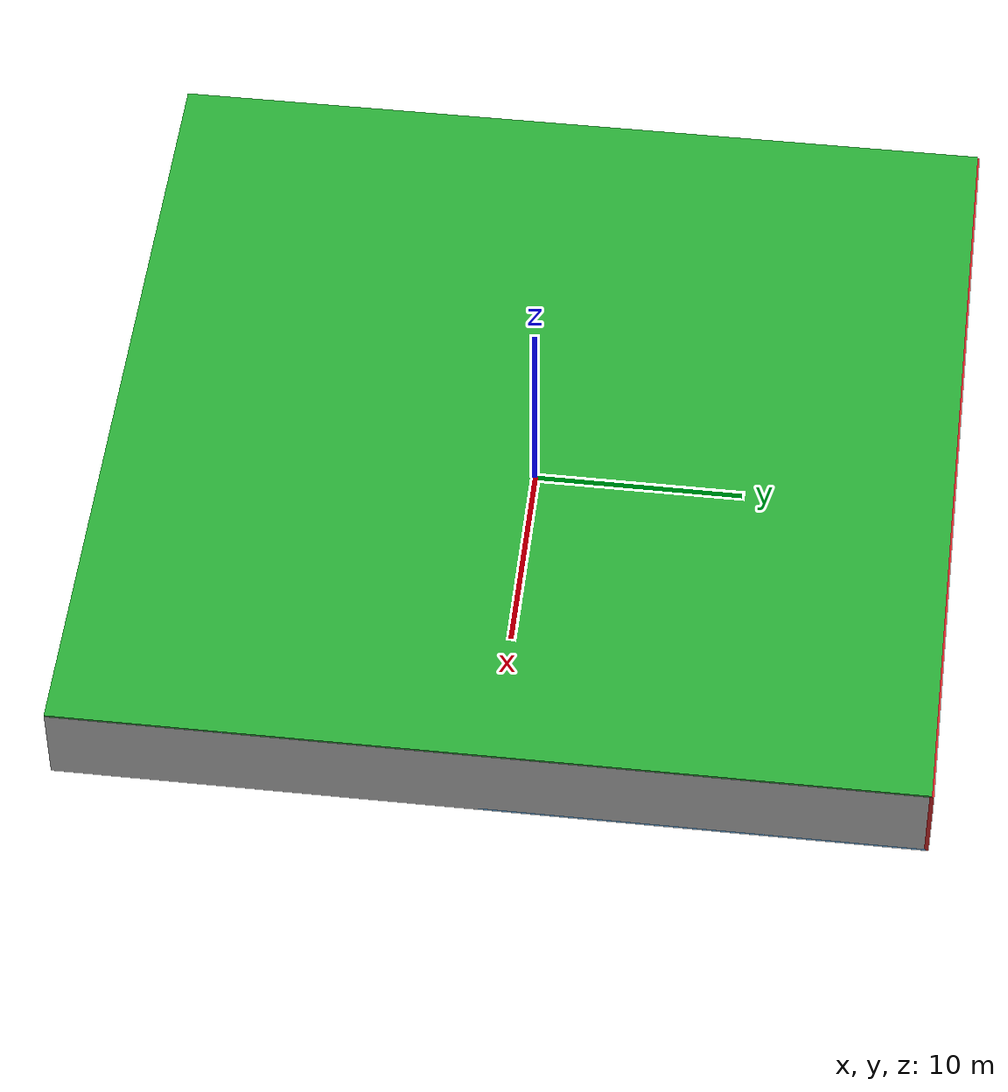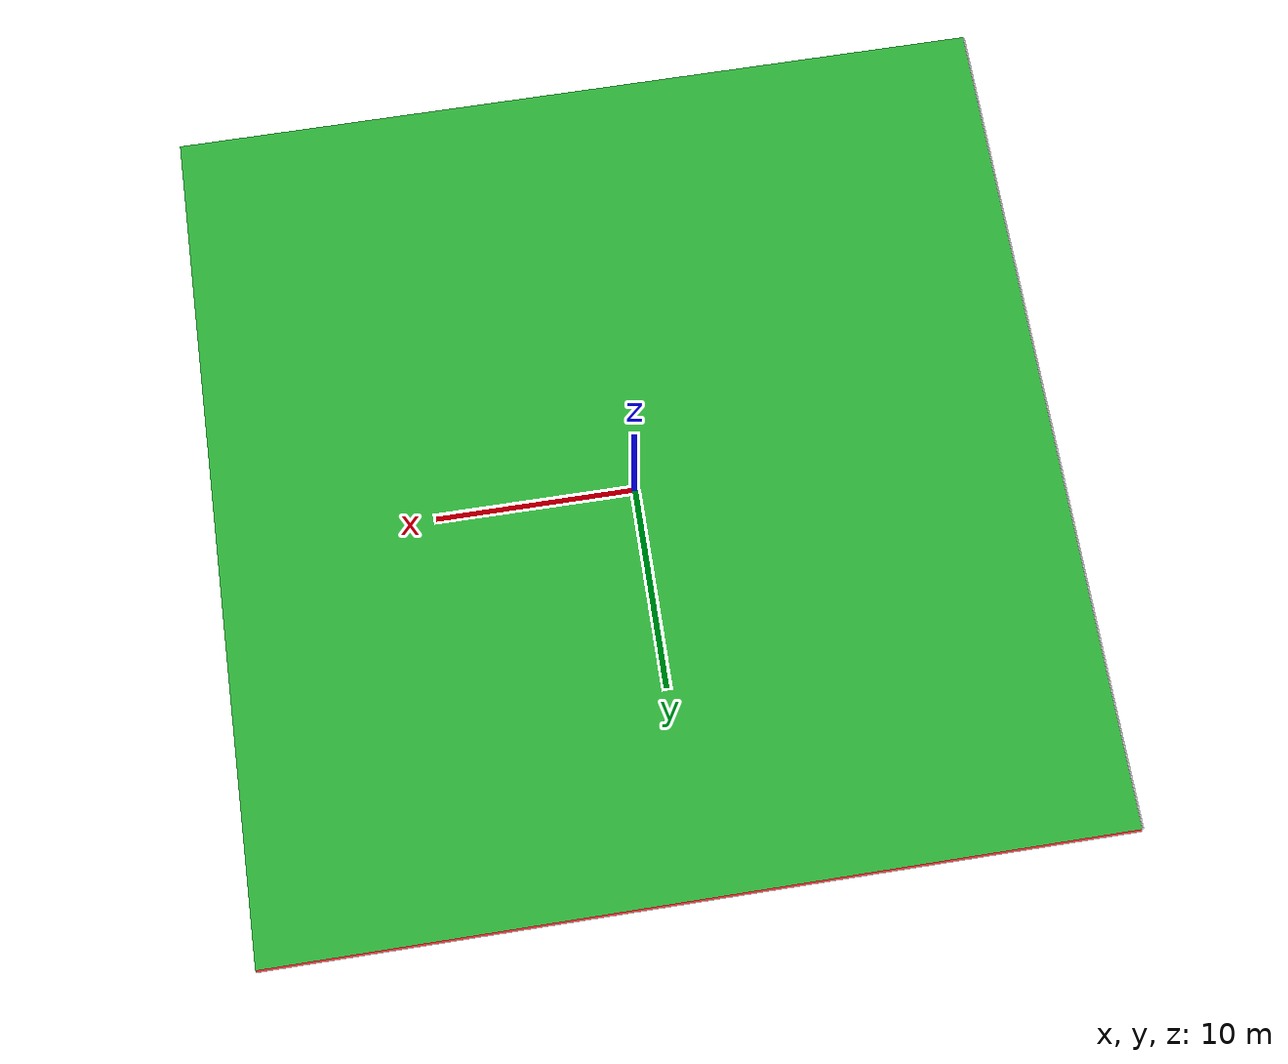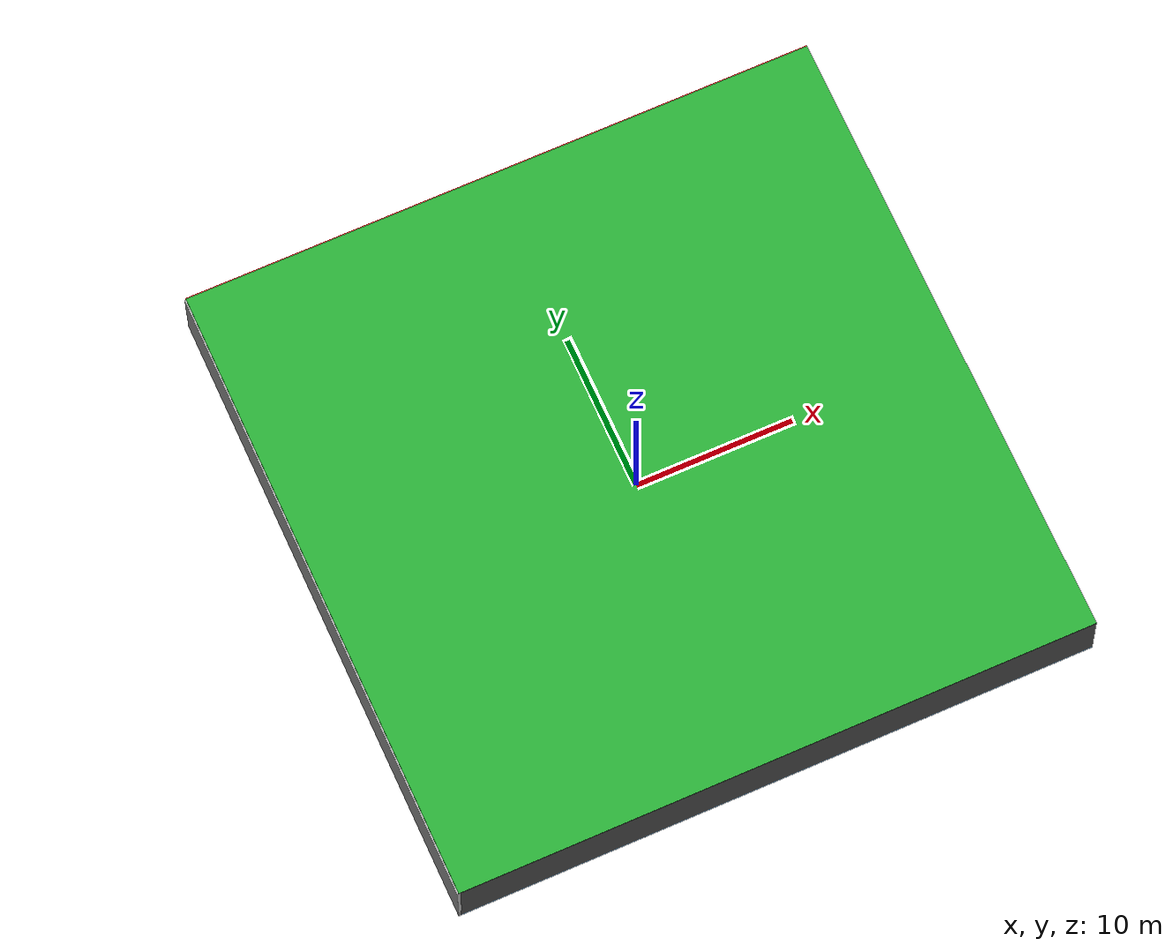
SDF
<sdf version="1.4">
 <world name="default">
  <physics type="ode">
   <max_step_size>0.001</max_step_size>
   <real_time_factor>1</real_time_factor>
   <real_time_update_rate>1000</real_time_update_rate>
   <gravity>0 0 -9.8</gravity>
  </physics>
  <scene><ambient>0.4 0.4 0.4 1</ambient><background>0.7 0.7 0.7 1</background><shadows>1</shadows></scene>
  <model name="Surrounding">
   <static>1</static>
   <link name="Ceiling">
    <collision name="Ceiling_Collision"><geometry><box><size>40 40 0.1</size></box></geometry></collision>
    <visual name="Ceiling_Visual">
     <geometry><box><size>40 40 0.1</size></box></geometry>
     <material>
      <script><uri>file://media/materials/scripts/gazebo.material</uri><name>Gazebo/GreenGlow</name></script>
     </material>
    </visual>
    <pose>0 0 4.05 0 0 0</pose>
   </link>
   <link name="Wall_South">
    <collision name="Wall_South_Collision">
     <geometry><box><size>40 0 4</size></box></geometry>
     <pose>0 0 2 0 -0 0</pose>
    </collision>
    <visual name="Wall_South_Visual">
     <pose>0 0 2 0 -0 0</pose>
     <geometry><box><size>40 0 4</size></box></geometry>
     <material>
      <script><uri>file://media/materials/scripts/gazebo.material</uri><name>Gazebo/Road</name></script>
     </material>
    </visual>
    <velocity_decay><linear>0</linear><angular>0</angular></velocity_decay>
    <pose>0 -20 0 0 -0 0</pose>
   </link>
   <link name="Wall_East">
    <collision name="Wall_21_Collision">
     <geometry><box><size>40 0 4</size></box></geometry>
     <pose>0 0 2 0 -0 0</pose>
    </collision>
    <visual name="Wall_21_Visual">
     <pose>0 0 2 0 -0 0</pose>
     <geometry><box><size>40 0 4</size></box></geometry>
     <material>
      <script><uri>file://media/materials/scripts/gazebo.material</uri><name>Gazebo/JointAnchor</name></script>
     </material>
    </visual>
    <velocity_decay><linear>0</linear><angular>0</angular></velocity_decay>
    <pose>20 0 0 0 -0 1.5708</pose>
   </link>
   <link name="Wall_North">
    <collision name="Wall_22_Collision">
     <geometry><box><size>40 0.2 4</size></box></geometry>
     <pose>0 0 2 0 -0 0</pose>
    </collision>
    <visual name="Wall_22_Visual">
     <pose>0 0 2 0 -0 0</pose>
     <geometry><box><size>40 0.2 4</size></box></geometry>
     <material>
      <script><uri>file://media/materials/scripts/gazebo.material</uri><name>Gazebo/RedBright</name></script>
     </material>
    </visual>
    <velocity_decay><linear>0</linear><angular>0</angular></velocity_decay>
    <pose>0 20 0 0 -0 0</pose>
   </link>
   <link name="Wall_West">
    <collision name="Wall_23_Collision">
     <geometry><box><size>40 0.2 4</size></box></geometry>
     <pose>0 0 2 0 -0 0</pose>
    </collision>
    <visual name="Wall_23_Visual">
     <pose>0 0 2 0 -0 0</pose>
     <geometry><box><size>40 0.2 4</size></box></geometry>
     <material>
      <script><uri>file://media/materials/scripts/gazebo.material</uri><name>Gazebo/CloudySky</name></script>
     </material>
    </visual>
    <velocity_decay><linear>0</linear><angular>0</angular></velocity_decay>
    <pose>-20 0 0 0 0 -1.5708</pose>
   </link>
   <link name="Ground_link">
    <collision name="collision">
     <pose>0 0 .05 0 -0 0</pose>
     <geometry><box><size>40 40 0.1</size></box></geometry>
    </collision>
    <visual name="visual">
     <pose>0 0 .05 0 -0 0</pose>
     <geometry><box><size>40 40 0.1</size></box></geometry>
     <material>
      <script><uri>file://media/materials/scripts/gazebo.material</uri><name>Gazebo/SkyBlue</name></script>
     </material>
    </visual>
   </link>
   <static>1</static>
  </model>
  <spherical_coordinates>
   <surface_model>EARTH_WGS84</surface_model>
   <latitude_deg>0</latitude_deg>
   <longitude_deg>0</longitude_deg>
   <elevation>0</elevation>
   <heading_deg>0</heading_deg>
  </spherical_coordinates>
  <light name="lightball_0" type="diffuse">
   <diffuse>0.8 0.8 0.8 1</diffuse>
   <specular>0.2 0.2 0.2 1</specular>
   <attenuation>
    <range>100</range>
    <constant>0.7</constant>
    <linear>0.01</linear>
    <quadratic>0.001</quadratic>
   </attenuation>
   <direction>-0.5 0.1 -0.9</direction>
   <pose>-2.08546980932 11.1930397112 3.00217922506 0 0 0</pose>
  </light>
  <light name="lightball_1" type="diffuse">
   <diffuse>0.8 0.8 0.8 1</diffuse>
   <specular>0.2 0.2 0.2 1</specular>
   <attenuation>
    <range>100</range>
    <constant>0.7</constant>
    <linear>0.01</linear>
    <quadratic>0.001</quadratic>
   </attenuation>
   <direction>-0.5 0.1 -0.9</direction>
   <pose>6.87592681785 11.6029590331 1.33578995983 0 0 0</pose>
  </light>
  <light name="lightball_2" type="diffuse">
   <diffuse>0.8 0.8 0.8 1</diffuse>
   <specular>0.2 0.2 0.2 1</specular>
   <attenuation>
    <range>100</range>
    <constant>0.7</constant>
    <linear>0.01</linear>
    <quadratic>0.001</quadratic>
   </attenuation>
   <direction>-0.5 0.1 -0.9</direction>
   <pose>1.55871269296 4.50903131797 2.76835239219 0 0 0</pose>
  </light>
  <light name="lightball_3" type="diffuse">
   <diffuse>0.8 0.8 0.8 1</diffuse>
   <specular>0.2 0.2 0.2 1</specular>
   <attenuation>
    <range>100</range>
    <constant>0.7</constant>
    <linear>0.01</linear>
    <quadratic>0.001</quadratic>
   </attenuation>
   <direction>-0.5 0.1 -0.9</direction>
   <pose>6.31608291454 -0.498549938642 1.04845592892 0 0 0</pose>
  </light>
  <light name="lightball_4" type="diffuse">
   <diffuse>0.8 0.8 0.8 1</diffuse>
   <specular>0.2 0.2 0.2 1</specular>
   <attenuation>
    <range>100</range>
    <constant>0.7</constant>
    <linear>0.01</linear>
    <quadratic>0.001</quadratic>
   </attenuation>
   <direction>-0.5 0.1 -0.9</direction>
   <pose>2.79152449804 0.461660050824 2.27003902249 0 0 0</pose>
  </light>
  <light name="lightball_5" type="diffuse">
   <diffuse>0.8 0.8 0.8 1</diffuse>
   <specular>0.2 0.2 0.2 1</specular>
   <attenuation>
    <range>100</range>
    <constant>0.7</constant>
    <linear>0.01</linear>
    <quadratic>0.001</quadratic>
   </attenuation>
   <direction>-0.5 0.1 -0.9</direction>
   <pose>-8.2234303736 3.49869016979 3.15830914708 0 0 0</pose>
  </light>
  <light name="lightball_6" type="diffuse">
   <diffuse>0.8 0.8 0.8 1</diffuse>
   <specular>0.2 0.2 0.2 1</specular>
   <attenuation>
    <range>100</range>
    <constant>0.7</constant>
    <linear>0.01</linear>
    <quadratic>0.001</quadratic>
   </attenuation>
   <direction>-0.5 0.1 -0.9</direction>
   <pose>10.6353778365 16.9576439923 3.79701820378 0 0 0</pose>
  </light>
  <light name="lightball_7" type="diffuse">
   <diffuse>0.8 0.8 0.8 1</diffuse>
   <specular>0.2 0.2 0.2 1</specular>
   <attenuation>
    <range>100</range>
    <constant>0.7</constant>
    <linear>0.01</linear>
    <quadratic>0.001</quadratic>
   </attenuation>
   <direction>-0.5 0.1 -0.9</direction>
   <pose>-8.81419136464 12.9945975977 2.69389614592 0 0 0</pose>
  </light>
  <light name="lightball_8" type="diffuse">
   <diffuse>0.8 0.8 0.8 1</diffuse>
   <specular>0.2 0.2 0.2 1</specular>
   <attenuation>
    <range>100</range>
    <constant>0.7</constant>
    <linear>0.01</linear>
    <quadratic>0.001</quadratic>
   </attenuation>
   <direction>-0.5 0.1 -0.9</direction>
   <pose>-5.8154435361 0.884881871246 3.06155992 0 0 0</pose>
  </light>
  <include>
   <uri>model://robocup_3Dsim_goal</uri>
   <pose>-18.3158221575 -1.81411095426 0 0 0 3.10588032683</pose>
  </include>
  <include>
   <uri>model://construction_cone</uri>
   <pose>-18.1678149368 9.84904201858 0 0 0 2.43795543765</pose>
  </include>
  <include><uri>model://cabinet</uri><pose>-17.1189806371 12.0216837752 0 0 0 1.54193551871</pose></include>
  <include>
   <uri>model://textured_shapes</uri>
   <pose>-11.8107882204 0.219561033332 0 0 0 0.443269663872</pose>
  </include>
  <include><uri>model://cabinet</uri><pose>-11.223223503 15.4436742151 0 0 0 2.31530880622</pose></include>
  <include>
   <uri>model://robocup_3Dsim_goal</uri>
   <pose>-8.24609280918 -6.61338196856 0 0 0 2.9167787657</pose>
  </include>
  <include><uri>model://table</uri><pose>-8.88412378192 3.24880500232 0 0 0 0.914394403813</pose></include>
  <include><uri>model://table</uri><pose>-4.66872005677 -12.0549269976 0 0 0 2.54906092239</pose></include>
  <include>
   <uri>model://robocup_3Dsim_goal</uri>
   <pose>-5.51057180915 -1.72452948566 0 0 0 0.703144705025</pose>
  </include>
  <include><uri>model://cabinet</uri><pose>-5.39129655457 2.49151141174 0 0 0 1.24578920292</pose></include>
  <include><uri>model://cabinet</uri><pose>-2.97033631898 18.9537755634 0 0 0 0.476068009236</pose></include>
  <include><uri>model://table</uri><pose>1.64982148828 -3.21362740802 0 0 0 3.13170836464</pose></include>
  <include>
   <uri>model://robocup_3Dsim_goal</uri>
   <pose>-0.0291566637384 4.63300763043 0 0 0 0.462164747176</pose>
  </include>
  <include>
   <uri>model://textured_shapes</uri>
   <pose>-0.0793023961919 7.03138404229 0 0 0 1.25927782377</pose>
  </include>
  <include>
   <uri>model://construction_cone</uri>
   <pose>0.643870099682 13.5144477302 0 0 0 1.64030411937</pose>
  </include>
  <include><uri>model://cabinet</uri><pose>3.5807035218 4.43043456416 0 0 0 2.5029294093</pose></include>
  <include>
   <uri>model://construction_cone</uri>
   <pose>4.51926499993 7.3543184332 0 0 0 0.78391583558</pose>
  </include>
  <include>
   <uri>model://textured_shapes</uri>
   <pose>4.38519699858 11.5112315211 0 0 0 2.08343684616</pose>
  </include>
  <include>
   <uri>model://robocup_3Dsim_goal</uri>
   <pose>6.9598397138 -17.1309567086 0 0 0 2.70245006348</pose>
  </include>
  <include>
   <uri>model://robocup_3Dsim_goal</uri>
   <pose>5.3898517901 3.38013640144 0 0 0 0.0768527968044</pose>
  </include>
  <include><uri>model://table</uri><pose>7.10731357717 8.5989654152 0 0 0 2.6271868374</pose></include>
  <include>
   <uri>model://textured_shapes</uri>
   <pose>6.9599301917 12.9327108903 0 0 0 2.12946926724</pose>
  </include>
  <include><uri>model://cabinet</uri><pose>5.35618382199 18.467414622 0 0 0 1.8538868173</pose></include>
  <include><uri>model://table</uri><pose>10.3087729101 -15.1296118635 0 0 0 2.74982458449</pose></include>
  <include><uri>model://table</uri><pose>10.2075745848 -1.88062832546 0 0 0 2.46518367053</pose></include>
  <include>
   <uri>model://textured_shapes</uri>
   <pose>13.0635694284 0.826739808219 0 0 0 1.45301980883</pose>
  </include>
  <include><uri>model://cabinet</uri><pose>13.4318895668 6.09541820728 0 0 0 1.92155850886</pose></include>
  <include><uri>model://cabinet</uri><pose>15.5945316271 -13.6607514887 0 0 0 2.53133051438</pose></include>
 </world>
</sdf>

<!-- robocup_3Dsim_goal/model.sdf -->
<sdf version="1.5">
  <model name="robocup_3d_goal">
    <static>true</static>
    <link name="left_post">
      <pose>0 1.05 0.45 0 0 0</pose>
      <collision name="collision">
        <geometry>
          <cylinder>
            <radius>0.05</radius>
            <length>0.9</length>
          </cylinder>
        </geometry>
      </collision>
      <visual name="visual">
        <geometry>
          <cylinder>
            <radius>0.05</radius>
            <length>0.9</length>
          </cylinder>
        </geometry>
        <material>
          <script>
            <uri>file://media/materials/scripts/gazebo.material</uri>
            <name>Gazebo/ZincYellow</name>
          </script>
        </material>
      </visual>
    </link>
    <link name="left_support_horiz_lower">
      <pose>0.30 1.05 0.01 0 0 0</pose>
      <collision name="collision">
        <geometry>
          <box>
            <size>0.50 0.02 0.02</size>
          </box>
        </geometry>
      </collision>
      <visual name="visual">
        <geometry>
          <box>
            <size>0.50 0.02 0.02</size>
          </box>
        </geometry>
        <material>
          <script>
            <uri>file://media/materials/scripts/gazebo.material</uri>
            <name>Gazebo/White</name>
          </script>
        </material>
      </visual>
    </link>
    <link name="left_support_horiz_upper">
      <pose>0.30 1.05 0.79 0 0 0</pose>
      <collision name="collision">
        <geometry>
          <box>
            <size>0.50 0.02 0.02</size>
          </box>
        </geometry>
      </collision>
      <visual name="visual">
        <geometry>
          <box>
            <size>0.50 0.02 0.02</size>
          </box>
        </geometry>
        <material>
          <script>
            <uri>file://media/materials/scripts/gazebo.material</uri>
            <name>Gazebo/White</name>
          </script>
        </material>
      </visual>
    </link>
    <link name="left_support_vertical">
      <pose>0.56 1.05 0.4 0 1.5708 0</pose>
      <collision name="collision">
        <geometry>
          <box>
            <size>0.80 0.02 0.02</size>
          </box>
        </geometry>
      </collision>
      <visual name="visual">
        <geometry>
          <box>
            <size>0.80 0.02 0.02</size>
          </box>
        </geometry>
        <material>
          <script>
            <uri>file://media/materials/scripts/gazebo.material</uri>
            <name>Gazebo/White</name>
          </script>
        </material>
      </visual>
    </link>
    <link name="right_support_horiz_lower">
      <pose>0.30 -1.05 0.01 0 0 0</pose>
      <collision name="collision">
        <geometry>
          <box>
            <size>0.50 0.02 0.02</size>
          </box>
        </geometry>
      </collision>
      <visual name="visual">
        <geometry>
          <box>
            <size>0.50 0.02 0.02</size>
          </box>
        </geometry>
        <material>
          <script>
            <uri>file://media/materials/scripts/gazebo.material</uri>
            <name>Gazebo/White</name>
          </script>
        </material>
      </visual>
    </link>
    <link name="right_support_horiz_upper">
      <pose>0.30 -1.05 0.79 0 0 0</pose>
      <collision name="collision">
        <geometry>
          <box>
            <size>0.50 0.02 0.02</size>
          </box>
        </geometry>
      </collision>
      <visual name="visual">
        <geometry>
          <box>
            <size>0.50 0.02 0.02</size>
          </box>
        </geometry>
        <material>
          <script>
            <uri>file://media/materials/scripts/gazebo.material</uri>
            <name>Gazebo/White</name>
          </script>
        </material>
      </visual>
    </link>
    <link name="right_support_vertical">
      <pose>0.56 -1.05 0.4 0 1.5708 0</pose>
      <collision name="collision">
        <geometry>
          <box>
            <size>0.80 0.02 0.02</size>
          </box>
        </geometry>
      </collision>
      <visual name="visual">
        <geometry>
          <box>
            <size>0.80 0.02 0.02</size>
          </box>
        </geometry>
        <material>
          <script>
            <uri>file://media/materials/scripts/gazebo.material</uri>
            <name>Gazebo/White</name>
          </script>
        </material>
      </visual>
    </link>
    <link name="center_support_horiz_lower">
      <pose>0.56 0 0.01 0 1.5708 0</pose>
      <collision name="collision">
        <geometry>
          <box>
            <size>0.02 2.08 0.02</size>
          </box>
        </geometry>
      </collision>
      <visual name="visual">
        <geometry>
          <box>
            <size>0.02 2.08 0.02</size>
          </box>
        </geometry>
        <material>
          <script>
            <uri>file://media/materials/scripts/gazebo.material</uri>
            <name>Gazebo/White</name>
          </script>
        </material>
      </visual>
    </link>
    <link name="center_support_horiz_upper">
      <pose>0.56 0 0.79 0 1.5708 0</pose>
      <collision name="collision">
        <geometry>
          <box>
            <size>0.02 2.08 0.02</size>
          </box>
        </geometry>
      </collision>
      <visual name="visual">
        <geometry>
          <box>
            <size>0.02 2.08 0.02</size>
          </box>
        </geometry>
        <material>
          <script>
            <uri>file://media/materials/scripts/gazebo.material</uri>
            <name>Gazebo/White</name>
          </script>
        </material>
      </visual>
    </link>
    <link name="right_post">
      <pose>0 -1.05 0.45 0 0 0</pose>
      <collision name="collision">
        <geometry>
          <cylinder>
            <radius>0.05</radius>
            <length>0.9</length>
          </cylinder>
        </geometry>
      </collision>
      <visual name="visual">
        <geometry>
          <cylinder>
            <radius>0.05</radius>
            <length>0.9</length>
          </cylinder>
        </geometry>
        <material>
          <script>
            <uri>file://media/materials/scripts/gazebo.material</uri>
            <name>Gazebo/ZincYellow</name>
          </script>
        </material>
      </visual>
    </link>
    <link name="crossbar">
      <pose>0 0 0.85 1.57 1.57 0</pose>
      <collision name="collision">
        <geometry>
          <cylinder>
            <radius>0.05</radius>
            <length>2.0</length>
          </cylinder>
        </geometry>
      </collision>
      <visual name="visual">
        <geometry>
          <cylinder>
            <radius>0.05</radius>
            <length>2.0</length>
          </cylinder>
        </geometry>
        <material>
          <script>
            <uri>file://media/materials/scripts/gazebo.material</uri>
            <name>Gazebo/ZincYellow</name>
          </script>
        </material>
      </visual>
    </link>
    <link name="center_net">
      <pose>0.56 0 0.40 0 0 0</pose>
      <collision name="collision">
        <geometry>
          <box>
            <size>0.01 2.1 0.80</size>
          </box>
        </geometry>
      </collision>
      <visual name="visual">
        <geometry>
          <box>
            <size>0.01 2.1 0.80</size>
          </box>
        </geometry>
        <material>
          <script>
            <uri>model://../model_source/models/robocup09_spl_field/materials/scripts/</uri>
            <uri>model://../model_source/models/robocup09_spl_field/materials/textures/</uri>
            <name>RoboCup/Net</name>
          </script>
        </material>
      </visual>
    </link>
    <link name="left_net">
      <pose>0.30 1.05 0.40 0 0 0</pose>
      <collision name="collision">
        <geometry>
          <box>
            <size>0.50 0.01 0.76</size>
          </box>
        </geometry>
      </collision>
      <visual name="visual">
        <geometry>
          <box>
            <size>0.50 0.01 0.76</size>
          </box>
        </geometry>
        <material>
          <script>
            <uri>model://../model_source/models/robocup09_spl_field/materials/scripts/</uri>
            <uri>model://../model_source/models/robocup09_spl_field/materials/textures/</uri>
            <name>RoboCup/Net</name>
          </script>
        </material>
      </visual>
    </link>
    <link name="right_net">
      <pose>0.30 -1.05 0.40 0 0 0</pose>
      <collision name="collision">
        <geometry>
          <box>
            <size>0.50 0.01 0.76</size>
          </box>
        </geometry>
      </collision>
      <visual name="visual">
        <geometry>
          <box>
            <size>0.50 0.01 0.76</size>
          </box>
        </geometry>
        <material>
          <script>
            <uri>model://../model_source/models/robocup09_spl_field/materials/scripts/</uri>
            <uri>model://../model_source/models/robocup09_spl_field/materials/textures/</uri>
            <name>RoboCup/Net</name>
          </script>
        </material>
      </visual>
    </link>
  </model>
</sdf>

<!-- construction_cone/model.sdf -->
<sdf version="1.5">
  <model name="Construction Cone">
    <link name="link">
      <collision name="collision">
        <geometry>
          <mesh>
            <scale>10 10 10</scale>
            <uri>file://isr-testbed/construction_cone/meshes/construction_cone.dae</uri>
          </mesh>
        </geometry>
      </collision>
      <visual name="visual">
        <geometry>
          <mesh>
            <scale>10 10 10</scale>
            <uri>file://isr-testbed/construction_cone/meshes/construction_cone.dae</uri>
          </mesh>
        </geometry>
      </visual>
    </link>
  </model>
</sdf>

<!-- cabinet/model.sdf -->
<sdf version="1.5">
  <model name="cabinet">
    <static>true</static>
    <link name="cabinet_bottom_plate">
      <inertial>
        <pose>0 0 -1 0 0 0</pose>
        <inertia>
          <ixx>2.050000</ixx>
          <ixy>0</ixy>
          <ixz>0</ixz>
          <iyy>2.050000</iyy>
          <iyz>0</iyz>
          <izz>2.050000</izz>
        </inertia>
        <mass>25.000000</mass>
      </inertial>
      <collision name="cabinet_bottom_plate_geom">
        <pose>0 0 0.010000 0 0 0</pose>
        <geometry>
          <box>
            <size>0.450000 0.450000 0.020000</size>
          </box>
        </geometry>
      </collision>
      <visual name="cabinet_bottom_plate_geom_visual">
        <pose>0 0 0.010000 0 0 0</pose>
        <geometry>
          <box>
            <size>0.450000 0.450000 0.020000</size>
          </box>
        </geometry>
        <material>
          <script>
            <uri>model://media/materials/scripts/gazebo.material</uri>
            <name>Gazebo/Wood</name>
          </script>
        </material>
      </visual>
      <collision name="cabinet_bottom_plate_geom_cabinet_back_plate">
        <pose>0.235000 0 0.510000 0 0 0</pose>
        <geometry>
          <box>
            <size>0.020000 0.450000 1.020000</size>
          </box>
        </geometry>
      </collision>
      <visual name="cabinet_bottom_plate_geom_cabinet_back_plate_visual">
        <pose>0.235000 0 0.510000 0 0 0</pose>
        <geometry>
          <box>
            <size>0.020000 0.450000 1.020000</size>
          </box>
        </geometry>
        <material>
          <script>
            <uri>model://media/materials/scripts/gazebo.material</uri>
            <name>Gazebo/Wood</name>
          </script>
        </material>
      </visual>
      <collision name="cabinet_bottom_plate_geom_cabinet_left_plate">
        <pose>0 0.235000 0.510000 0 0 0</pose>
        <geometry>
          <box>
            <size>0.450000 0.020000 1.020000</size>
          </box>
        </geometry>
      </collision>
      <visual name="cabinet_bottom_plate_geom_cabinet_left_plate_visual">
        <pose>0 0.235000 0.510000 0 0 0</pose>
        <geometry>
          <box>
            <size>0.450000 0.020000 1.020000</size>
          </box>
        </geometry>
        <material>
          <script>
            <uri>model://media/materials/scripts/gazebo.material</uri>
            <name>Gazebo/Wood</name>
          </script>
        </material>
      </visual>
      <collision name="cabinet_bottom_plate_geom_cabinet_middle_plate">
        <pose>0 0 0.510000 0 0 0</pose>
        <geometry>
          <box>
            <size>0.450000 0.450000 0.020000</size>
          </box>
        </geometry>
      </collision>
      <visual name="cabinet_bottom_plate_geom_cabinet_middle_plate_visual">
        <pose>0 0 0.510000 0 0 0</pose>
        <geometry>
          <box>
            <size>0.450000 0.450000 0.020000</size>
          </box>
        </geometry>
        <material>
          <script>
            <uri>model://media/materials/scripts/gazebo.material</uri>
            <name>Gazebo/Wood</name>
          </script>
        </material>
      </visual>
      <collision name="cabinet_bottom_plate_geom_cabinet_right_plate">
        <pose>0 -0.235000 0.510000 0 0 0</pose>
        <geometry>
          <box>
            <size>0.450000 0.020000 1.020000</size>
          </box>
        </geometry>
      </collision>
      <visual name="cabinet_bottom_plate_geom_cabinet_right_plate_visual">
        <pose>0 -0.235000 0.510000 0 0 0</pose>
        <geometry>
          <box>
            <size>0.450000 0.020000 1.020000</size>
          </box>
        </geometry>
        <material>
          <script>
            <uri>model://media/materials/scripts/gazebo.material</uri>
            <name>Gazebo/Wood</name>
          </script>
        </material>
      </visual>
      <collision name="cabinet_bottom_plate_geom_cabinet_top_plate">
        <pose>0 0 1.010000 0 0 0</pose>
        <geometry>
          <box>
            <size>0.450000 0.450000 0.020000</size>
          </box>
        </geometry>
      </collision>
      <visual name="cabinet_bottom_plate_geom_cabinet_top_plate_visual">
        <pose>0 0 1.010000 0 0 0</pose>
        <geometry>
          <box>
            <size>0.450000 0.450000 0.020000</size>
          </box>
        </geometry>
        <material>
          <script>
            <uri>model://media/materials/scripts/gazebo.material</uri>
            <name>Gazebo/Wood</name>
          </script>
        </material>
      </visual>
    </link>
  </model>
</sdf>

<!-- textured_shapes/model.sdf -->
<sdf version="1.6">
  <model name="textured_shapes">
    <pose>0 0 0.5 0 0 0</pose>
    <link name="box">
      <pose>0 -1.5 0 0 0 0</pose>
      <collision name="collision">
        <geometry>
          <box>
            <size>1 1 1</size>
          </box>
        </geometry>
      </collision>
      <visual name="visual">
        <geometry>
          <box>
            <size>1 1 1</size>
          </box>
        </geometry>
        <material>
          <script>
            <uri>model://../model_source/models/textured_shapes/materials/scripts</uri>
            <uri>model://../model_source/models/textured_shapes/materials/textures</uri>
            <name>TexturedShape/Squares</name>
          </script>
        </material>
      </visual>
    </link>
    <link name="sphere">
      <collision name="collision">
        <geometry>
          <sphere>
            <radius>0.5</radius>
          </sphere>
        </geometry>
      </collision>
      <visual name="visual">
        <geometry>
          <sphere>
            <radius>0.5</radius>
          </sphere>
        </geometry>
        <material>
          <script>
            <uri>model://../model_source/models/textured_shapes/materials/scripts</uri>
            <uri>model://../model_source/models/textured_shapes/materials/textures</uri>
            <name>TexturedShape/Squares</name>
          </script>
        </material>
      </visual>
    </link>
    <link name="cylinder">
      <pose>0 1.5 0 0 0 0</pose>
      <collision name="collision">
        <geometry>
          <cylinder>
            <radius>0.5</radius>
            <length>1</length>
          </cylinder>
        </geometry>
      </collision>
      <visual name="visual">
        <geometry>
          <cylinder>
            <radius>0.5</radius>
            <length>1</length>
          </cylinder>
        </geometry>
        <material>
          <script>
            <uri>model://../model_source/models/textured_shapes/materials/scripts</uri>
            <uri>model://../model_source/models/textured_shapes/materials/textures</uri>
            <name>TexturedShape/Squares</name>
          </script>
        </material>
      </visual>
    </link>
  </model>
</sdf>

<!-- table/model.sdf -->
<sdf version="1.5">
  <model name="table">
    <static>true</static>
    <link name="link">
      <collision name="surface">
        <pose>0 0 1.0 0 0 0</pose>
        <geometry>
          <box>
            <size>1.5 0.8 0.03</size>
          </box>
        </geometry>
        <surface>
          <friction>
            <ode>
              <mu>0.6</mu>
              <mu2>0.6</mu2>
            </ode>
          </friction>
        </surface>
      </collision>
      <visual name="visual1">
        <pose>0 0 1.0 0 0 0</pose>
        <geometry>
          <box>
            <size>1.5 0.8 0.03</size>
          </box>
        </geometry>
        <material>
          <script>
            <uri>model://media/materials/scripts/gazebo.material</uri>
            <name>Gazebo/Wood</name>
          </script>
        </material>
      </visual>
      <collision name="front_left_leg">
        <pose>0.68 0.38 0.5 0 0 0</pose>
        <geometry>
          <cylinder>
            <radius>0.02</radius>
            <length>1.0</length>
          </cylinder>
        </geometry>
      </collision>
      <visual name="front_left_leg">
        <pose>0.68 0.38 0.5 0 0 0</pose>
        <geometry>
          <cylinder>
            <radius>0.02</radius>
            <length>1.0</length>
          </cylinder>
        </geometry>
        <material>
          <script>
            <uri>model://media/materials/scripts/gazebo.material</uri>
            <name>Gazebo/Grey</name>
          </script>
        </material>
      </visual>
      <collision name="front_right_leg">
        <pose>0.68 -0.38 0.5 0 0 0</pose>
        <geometry>
          <cylinder>
            <radius>0.02</radius>
            <length>1.0</length>
          </cylinder>
        </geometry>
      </collision>
      <visual name="front_right_leg">
        <pose>0.68 -0.38 0.5 0 0 0</pose>
        <geometry>
          <cylinder>
            <radius>0.02</radius>
            <length>1.0</length>
          </cylinder>
        </geometry>
        <material>
          <script>
            <uri>model://media/materials/scripts/gazebo.material</uri>
            <name>Gazebo/Grey</name>
          </script>
        </material>
      </visual>
      <collision name="back_right_leg">
        <pose>-0.68 -0.38 0.5 0 0 0</pose>
        <geometry>
          <cylinder>
            <radius>0.02</radius>
            <length>1.0</length>
          </cylinder>
        </geometry>
      </collision>
      <visual name="back_right_leg">
        <pose>-0.68 -0.38 0.5 0 0 0</pose>
        <geometry>
          <cylinder>
            <radius>0.02</radius>
            <length>1.0</length>
          </cylinder>
        </geometry>
        <material>
          <script>
            <uri>model://media/materials/scripts/gazebo.material</uri>
            <name>Gazebo/Grey</name>
          </script>
        </material>
      </visual>
      <collision name="back_left_leg">
        <pose>-0.68 0.38 0.5 0 0 0</pose>
        <geometry>
          <cylinder>
            <radius>0.02</radius>
            <length>1.0</length>
          </cylinder>
        </geometry>
      </collision>
      <visual name="back_left_leg">
        <pose>-0.68 0.38 0.5 0 0 0</pose>
        <geometry>
          <cylinder>
            <radius>0.02</radius>
            <length>1.0</length>
          </cylinder>
        </geometry>
        <material>
          <script>
            <uri>model://media/materials/scripts/gazebo.material</uri>
            <name>Gazebo/Grey</name>
          </script>
        </material>
      </visual>
    </link>
  </model>
</sdf>
